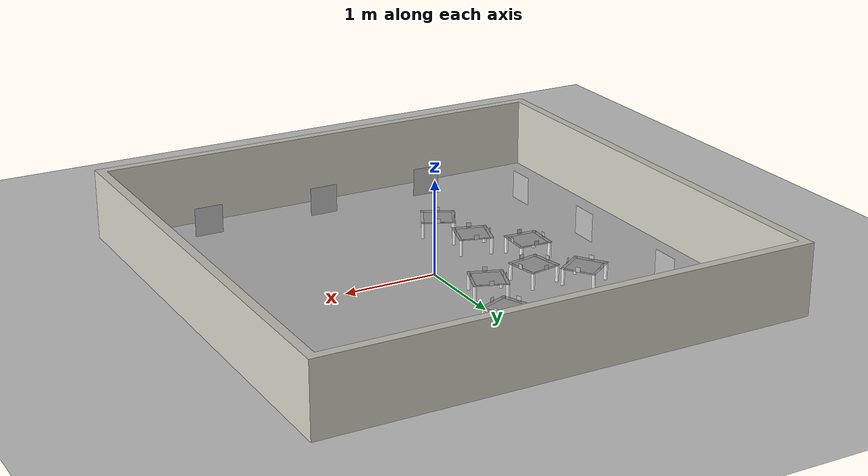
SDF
<sdf version="1.6">
 <world name="default">
  <physics name="default_physics" default="0" type="ode">
   <max_step_size>0.002</max_step_size>
   <real_time_factor>1</real_time_factor>
   <real_time_update_rate>500</real_time_update_rate>
   <ode><solver><type>quick</type></solver></ode>
  </physics>
  <scene><ambient>0.4 0.4 0.4 1</ambient><background>0.7 0.7 0.7 1</background><shadows>0</shadows></scene>
  <include><uri>model://ground_plane</uri></include>
  <include><uri>model://sun</uri></include>
  <include><uri>model://arena</uri></include>
  <include>
   <uri>model://carrier100</uri>
   <name>carrier100</name>
   <pose>-0.673758 -0.410567 0 0 0 -1.866816</pose>
  </include>
  <include>
   <uri>model://carrier101</uri>
   <name>carrier101</name>
   <pose>-0.657850 1.771559 0 0 0 -0.111598</pose>
  </include>
  <include>
   <uri>model://carrier102</uri>
   <name>carrier102</name>
   <pose>-1.077948 0.013895 0 0 0 1.518797</pose>
  </include>
  <include>
   <uri>model://carrier103</uri>
   <name>carrier103</name>
   <pose>-0.203010 0.698064 0 0 0 1.223442</pose>
  </include>
  <include>
   <uri>model://carrier104</uri>
   <name>carrier104</name>
   <pose>-0.009148 1.375804 0 0 0 0.388665</pose>
  </include>
  <include>
   <uri>model://carrier105</uri>
   <name>carrier105</name>
   <pose>-0.583773 -0.990893 0 0 0 1.091607</pose>
  </include>
  <include>
   <uri>model://carrier106</uri>
   <name>carrier106</name>
   <pose>-0.780160 0.610297 0 0 0 1.759919</pose>
  </include>
  <include>
   <uri>model://carrier107</uri>
   <name>carrier107</name>
   <pose>-1.196731 0.885650 0 0 0 -0.967300</pose>
  </include>
 </world>
</sdf>

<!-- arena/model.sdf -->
<sdf version="1.5">
    <model name="arena">
      <static>true</static>
      <link name="link">
        <inertial>
          <mass>1.0</mass>
          <inertia><ixx>0.01</ixx><ixy>0.0</ixy><ixz>0.0</ixz>
            <iyy>0.01</iyy><iyz>0.0</iyz><izz>0.01</izz>
          </inertia>
        </inertial>
        <collision name="collision">
          <geometry>
            <mesh>
              <uri>model://arena_walls/arena.stl</uri>
              <scale>0.001 0.001 0.0005</scale>
            </mesh>
          </geometry>
          <surface>
              <friction>
              <ode>
                <mu>0.1</mu>
                <mu2>0.1</mu2>
              </ode>
              </friction>
          </surface>
        </collision>
        <visual name="visual">
          <geometry>
            <mesh>
              <uri>model://arena_walls/arena.stl</uri>
              <scale>0.001 0.001 0.0005</scale>
            </mesh>
          </geometry>
          <material>
            <script>
              <name>Gazebo/PaintedWall</name>
              <uri>file://media/materials/scripts/gazebo.material</uri>
            </script>
          </material>
        </visual>
        <visual name="tag000">
          <pose>2.499 0.5 0.4 0.03 0 0</pose> <geometry> <box><size>0.00011 0.3 0.3</size></box> </geometry>
          <material> <script> <uri>file://media/materials/scripts/tag.material</uri> <name>tag000</name> </script> </material>
        </visual>
        <visual name="tag001">
          <pose>2.499 1.73 0.4 -0.01 0 0</pose> <geometry> <box><size>0.00011 0.3 0.3</size></box> </geometry>
          <material> <script> <uri>file://media/materials/scripts/tag.material</uri> <name>tag001</name> </script> </material>
        </visual>
        <visual name="tag002">
          <pose>1.8 2.499 0.41 0.03 0 1.5708</pose> <geometry> <box><size>0.00011 0.3 0.3</size></box> </geometry>
          <material> <script> <uri>file://media/materials/scripts/tag.material</uri> <name>tag002</name> </script> </material>
        </visual>
        <visual name="tag003">
          <pose>0.6 2.499 0.42 0.01 0 1.5708</pose> <geometry> <box><size>0.00011 0.3 0.3</size></box> </geometry>
          <material> <script> <uri>file://media/materials/scripts/tag.material</uri> <name>tag003</name> </script> </material>
        </visual>
        <visual name="tag004">
          <pose>-0.82 2.499 0.4 -0.05 0 1.5708</pose> <geometry> <box><size>0.00011 0.3 0.3</size></box> </geometry>
          <material> <script> <uri>file://media/materials/scripts/tag.material</uri> <name>tag004</name> </script> </material>
        </visual>
        <visual name="tag005">
          <pose>-1.5 1.78 0.41 0.0 0 0</pose> <geometry> <box><size>0.00011 0.3 0.3</size></box> </geometry>
          <material> <script> <uri>file://media/materials/scripts/tag.material</uri> <name>tag005</name> </script> </material>
        </visual>
        <visual name="tag006">
          <pose>-1.5 0.4 0.4 -0.01 0 0</pose> <geometry> <box><size>0.00011 0.3 0.3</size></box> </geometry>
          <material> <script> <uri>file://media/materials/scripts/tag.material</uri> <name>tag006</name> </script> </material>
        </visual>
        <visual name="tag007">
          <pose>-1.5 -0.82 0.4 0.002 0 0</pose> <geometry> <box><size>0.00011 0.3 0.3</size></box> </geometry>
          <material> <script> <uri>file://media/materials/scripts/tag.material</uri> <name>tag007</name> </script> </material>
        </visual>
        <visual name="tag008">
          <pose>1.79 -1.5 0.41 0.002 0 -1.5708</pose> <geometry> <box><size>0.00011 0.3 0.3</size></box> </geometry>
          <material> <script> <uri>file://media/materials/scripts/tag.material</uri> <name>tag008</name> </script> </material>
        </visual>
        <visual name="tag009">
          <pose>0.5 -1.5 0.4 -0.001 0 -1.5708</pose> <geometry> <box><size>0.00011 0.3 0.3</size></box> </geometry>
          <material> <script> <uri>file://media/materials/scripts/tag.material</uri> <name>tag009</name> </script> </material>
        </visual>
        <visual name="tag010">
          <pose>-0.72 -1.5 0.4 0.03 0 -1.5708</pose> <geometry> <box><size>0.00011 0.3 0.3</size></box> </geometry>
          <material> <script> <uri>file://media/materials/scripts/tag.material</uri> <name>tag010</name> </script> </material>
        </visual>
        <visual name="tag011">
          <pose>2.499 -0.77 0.392 0.002 0 0</pose> <geometry> <box><size>0.00011 0.3 0.3</size></box> </geometry>
          <material> <script> <uri>file://media/materials/scripts/tag.material</uri> <name>tag011</name> </script> </material>
        </visual>
        <visual name="floor">
          <pose>0 0 0.002 0 0 0</pose>
          <geometry>
            <box>
              <size>5 5 0.001</size>
            </box>
          </geometry>
          <material>
            <script>
              <name>floortile</name>
              <uri>file://media/materials/scripts/floortile.material</uri>
            </script>
          </material>
        </visual>
      </link>
    </model>
</sdf>

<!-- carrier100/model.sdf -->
<sdf version="1.5">
  <model name="carrier">
    <static>false</static>
    <link name="base_link">
      <inertial> <mass>1.0</mass> <inertia><ixx>0.001</ixx><iyy>0.001</iyy><izz>0.001</izz></inertia> </inertial>
      <collision name="surface">
        <pose>0 0 0.18 0 0 0</pose>
        <geometry> <box> <size>0.36 0.36 0.01</size> </box> </geometry>
        <surface> <friction> <ode> <mu>Inf</mu> <mu2>Inf</mu2> </ode> </friction> </surface>
      </collision>
      <visual name="visual1">
        <pose>0 0 0.18 0 0 0</pose>
        <geometry> <box> <size>0.36 0.36 0.01</size> </box> </geometry>
        <material> <script> <uri>file://media/materials/scripts/gazebo.material</uri> <name>Gazebo/GreyTransparent</name> </script> </material>
      </visual>
      <visual name="tagn">
        <pose>0 0.18 0.200 1.5708 1.5708 0</pose>
        <geometry> <box> <size>0.05 0.05 0.001</size> </box> </geometry>
        <material> <script> <uri>file://media/materials/scripts/tag.material</uri> <name>tag100</name> </script> </material>
      </visual>
      <visual name="tags">
        <pose>0 -0.18 0.200 1.5708 -1.5708 0</pose>
        <geometry> <box> <size>0.05 0.05 0.001</size> </box> </geometry>
        <material> <script> <uri>file://media/materials/scripts/tag.material</uri> <name>tag100</name> </script> </material>
      </visual>
      <visual name="tage">
        <pose>0.18 0 0.200 1.5708 -1.5708 1.5708</pose>
        <geometry> <box> <size>0.05 0.05 0.001</size> </box> </geometry>
        <material> <script> <uri>file://media/materials/scripts/tag.material</uri> <name>tag100</name> </script> </material>
      </visual>
      <visual name="tagw">
        <pose>-0.18 0 0.200 1.5708 1.5708 1.5708</pose>
        <geometry> <box> <size>0.05 0.05 0.001</size> </box> </geometry>
        <material> <script> <uri>file://media/materials/scripts/tag.material</uri> <name>tag100</name> </script> </material>
      </visual>
      <visual name="tagt">
        <pose>0.0 0 0.175 0 0 0</pose>
        <geometry> <box> <size>0.3 0.3 0.001</size> </box> </geometry>
        <material> <script> <uri>file://media/materials/scripts/tag.material</uri> <name>mm49_target</name> </script> </material>
      </visual>
      <collision name="front_left_leg">
        <pose>0.162 0.162 0.09 0 0 0</pose>
        <geometry> <cylinder> <radius>0.018</radius> <length>0.175</length> </cylinder> </geometry>
        <surface> <friction> <ode> <mu>0.1</mu> <mu2>0.1</mu2> </ode> </friction> </surface>
      </collision>
      <visual name="front_left_leg">
        <pose>0.162 0.162 0.09 0 0 0</pose>
        <geometry> <cylinder> <radius>0.018</radius> <length>0.175</length> </cylinder> </geometry>
        <material> <script> <uri>file://media/materials/scripts/gazebo.material</uri> <name>Gazebo/White</name> </script> </material>
      </visual>
      <collision name="front_right_leg">
        <pose>0.162 -0.162 0.09 0 0 0</pose>
        <geometry> <cylinder> <radius>0.018</radius> <length>0.175</length> </cylinder> </geometry>
        <surface> <friction> <ode> <mu>0.1</mu> <mu2>0.1</mu2> </ode> </friction> </surface>
      </collision>
      <visual name="front_right_leg">
        <pose>0.162 -0.162 0.09 0 0 0</pose>
        <geometry> <cylinder> <radius>0.018</radius> <length>0.175</length> </cylinder> </geometry>
        <material> <script> <uri>file://media/materials/scripts/gazebo.material</uri> <name>Gazebo/White</name> </script> </material>
      </visual>
      <collision name="back_right_leg">
        <pose>-0.162 -0.162 0.09 0 0 0</pose>
        <geometry> <cylinder> <radius>0.018</radius> <length>0.175</length> </cylinder> </geometry>
        <surface> <friction> <ode> <mu>0.1</mu> <mu2>0.1</mu2> </ode> </friction> </surface>
      </collision>
      <visual name="back_right_leg">
        <pose>-0.162 -0.162 0.09 0 0 0</pose>
        <geometry> <cylinder> <radius>0.018</radius> <length>0.175</length> </cylinder> </geometry>
        <material> <script> <uri>file://media/materials/scripts/gazebo.material</uri> <name>Gazebo/White</name> </script> </material>
      </visual>
      <collision name="back_left_leg">
        <pose>-0.162 0.162 0.09 0 0 0</pose>
        <geometry> <cylinder> <radius>0.018</radius> <length>0.175</length> </cylinder> </geometry>
        <surface> <friction> <ode> <mu>0.1</mu> <mu2>0.1</mu2> </ode> </friction> </surface>
      </collision>
      <visual name="back_left_leg">
        <pose>-0.162 0.162 0.09 0 0 0</pose>
        <geometry> <cylinder> <radius>0.018</radius> <length>0.175</length> </cylinder> </geometry>
        <material> <script> <uri>file://media/materials/scripts/gazebo.material</uri> <name>Gazebo/White</name> </script> </material>
      </visual>
    </link>
    <plugin name="gazebo_ros_p3d_named" filename="libgazebo_ros_p3d_named.so">
      <ros> <remapping>odom:=/ground_truth</remapping> <namespace>carrier100</namespace> </ros>
      <body_name>base_link</body_name>
      <frame_name>map</frame_name>
      <child_frame>carrier100</child_frame>
      <update_rate>50</update_rate>
      <xyz_offset>0.0 0.0 0.0</xyz_offset>
      <rpy_offset>0.0 0.0 0.0</rpy_offset>
      <gaussian_noise>0.01</gaussian_noise>
    </plugin>
  </model>
</sdf>

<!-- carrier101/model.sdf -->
<sdf version="1.5">
  <model name="carrier">
    <static>false</static>
    <link name="base_link">
      <inertial> <mass>1.0</mass> <inertia><ixx>0.001</ixx><iyy>0.001</iyy><izz>0.001</izz></inertia> </inertial>
      <collision name="surface">
        <pose>0 0 0.18 0 0 0</pose>
        <geometry> <box> <size>0.36 0.36 0.01</size> </box> </geometry>
        <surface> <friction> <ode> <mu>Inf</mu> <mu2>Inf</mu2> </ode> </friction> </surface>
      </collision>
      <visual name="visual1">
        <pose>0 0 0.18 0 0 0</pose>
        <geometry> <box> <size>0.36 0.36 0.01</size> </box> </geometry>
        <material> <script> <uri>file://media/materials/scripts/gazebo.material</uri> <name>Gazebo/GreyTransparent</name> </script> </material>
      </visual>
      <visual name="tagn">
        <pose>0 0.18 0.200 1.5708 1.5708 0</pose>
        <geometry> <box> <size>0.05 0.05 0.001</size> </box> </geometry>
        <material> <script> <uri>file://media/materials/scripts/tag.material</uri> <name>tag101</name> </script> </material>
      </visual>
      <visual name="tags">
        <pose>0 -0.18 0.200 1.5708 -1.5708 0</pose>
        <geometry> <box> <size>0.05 0.05 0.001</size> </box> </geometry>
        <material> <script> <uri>file://media/materials/scripts/tag.material</uri> <name>tag101</name> </script> </material>
      </visual>
      <visual name="tage">
        <pose>0.18 0 0.200 1.5708 -1.5708 1.5708</pose>
        <geometry> <box> <size>0.05 0.05 0.001</size> </box> </geometry>
        <material> <script> <uri>file://media/materials/scripts/tag.material</uri> <name>tag101</name> </script> </material>
      </visual>
      <visual name="tagw">
        <pose>-0.18 0 0.200 1.5708 1.5708 1.5708</pose>
        <geometry> <box> <size>0.05 0.05 0.001</size> </box> </geometry>
        <material> <script> <uri>file://media/materials/scripts/tag.material</uri> <name>tag101</name> </script> </material>
      </visual>
      <visual name="tagt">
        <pose>0.0 0 0.175 0 0 0</pose>
        <geometry> <box> <size>0.3 0.3 0.001</size> </box> </geometry>
        <material> <script> <uri>file://media/materials/scripts/tag.material</uri> <name>mm49_target</name> </script> </material>
      </visual>
      <collision name="front_left_leg">
        <pose>0.162 0.162 0.09 0 0 0</pose>
        <geometry> <cylinder> <radius>0.018</radius> <length>0.175</length> </cylinder> </geometry>
        <surface> <friction> <ode> <mu>0.1</mu> <mu2>0.1</mu2> </ode> </friction> </surface>
      </collision>
      <visual name="front_left_leg">
        <pose>0.162 0.162 0.09 0 0 0</pose>
        <geometry> <cylinder> <radius>0.018</radius> <length>0.175</length> </cylinder> </geometry>
        <material> <script> <uri>file://media/materials/scripts/gazebo.material</uri> <name>Gazebo/White</name> </script> </material>
      </visual>
      <collision name="front_right_leg">
        <pose>0.162 -0.162 0.09 0 0 0</pose>
        <geometry> <cylinder> <radius>0.018</radius> <length>0.175</length> </cylinder> </geometry>
        <surface> <friction> <ode> <mu>0.1</mu> <mu2>0.1</mu2> </ode> </friction> </surface>
      </collision>
      <visual name="front_right_leg">
        <pose>0.162 -0.162 0.09 0 0 0</pose>
        <geometry> <cylinder> <radius>0.018</radius> <length>0.175</length> </cylinder> </geometry>
        <material> <script> <uri>file://media/materials/scripts/gazebo.material</uri> <name>Gazebo/White</name> </script> </material>
      </visual>
      <collision name="back_right_leg">
        <pose>-0.162 -0.162 0.09 0 0 0</pose>
        <geometry> <cylinder> <radius>0.018</radius> <length>0.175</length> </cylinder> </geometry>
        <surface> <friction> <ode> <mu>0.1</mu> <mu2>0.1</mu2> </ode> </friction> </surface>
      </collision>
      <visual name="back_right_leg">
        <pose>-0.162 -0.162 0.09 0 0 0</pose>
        <geometry> <cylinder> <radius>0.018</radius> <length>0.175</length> </cylinder> </geometry>
        <material> <script> <uri>file://media/materials/scripts/gazebo.material</uri> <name>Gazebo/White</name> </script> </material>
      </visual>
      <collision name="back_left_leg">
        <pose>-0.162 0.162 0.09 0 0 0</pose>
        <geometry> <cylinder> <radius>0.018</radius> <length>0.175</length> </cylinder> </geometry>
        <surface> <friction> <ode> <mu>0.1</mu> <mu2>0.1</mu2> </ode> </friction> </surface>
      </collision>
      <visual name="back_left_leg">
        <pose>-0.162 0.162 0.09 0 0 0</pose>
        <geometry> <cylinder> <radius>0.018</radius> <length>0.175</length> </cylinder> </geometry>
        <material> <script> <uri>file://media/materials/scripts/gazebo.material</uri> <name>Gazebo/White</name> </script> </material>
      </visual>
    </link>
    <plugin name="gazebo_ros_p3d_named" filename="libgazebo_ros_p3d_named.so">
      <ros> <remapping>odom:=/ground_truth</remapping> <namespace>carrier101</namespace> </ros>
      <body_name>base_link</body_name>
      <frame_name>map</frame_name>
      <child_frame>carrier101</child_frame>
      <update_rate>50</update_rate>
      <xyz_offset>0.0 0.0 0.0</xyz_offset>
      <rpy_offset>0.0 0.0 0.0</rpy_offset>
      <gaussian_noise>0.01</gaussian_noise>
    </plugin>
  </model>
</sdf>

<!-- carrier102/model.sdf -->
<sdf version="1.5">
  <model name="carrier">
    <static>false</static>
    <link name="base_link">
      <inertial> <mass>1.0</mass> <inertia><ixx>0.001</ixx><iyy>0.001</iyy><izz>0.001</izz></inertia> </inertial>
      <collision name="surface">
        <pose>0 0 0.18 0 0 0</pose>
        <geometry> <box> <size>0.36 0.36 0.01</size> </box> </geometry>
        <surface> <friction> <ode> <mu>Inf</mu> <mu2>Inf</mu2> </ode> </friction> </surface>
      </collision>
      <visual name="visual1">
        <pose>0 0 0.18 0 0 0</pose>
        <geometry> <box> <size>0.36 0.36 0.01</size> </box> </geometry>
        <material> <script> <uri>file://media/materials/scripts/gazebo.material</uri> <name>Gazebo/GreyTransparent</name> </script> </material>
      </visual>
      <visual name="tagn">
        <pose>0 0.18 0.200 1.5708 1.5708 0</pose>
        <geometry> <box> <size>0.05 0.05 0.001</size> </box> </geometry>
        <material> <script> <uri>file://media/materials/scripts/tag.material</uri> <name>tag102</name> </script> </material>
      </visual>
      <visual name="tags">
        <pose>0 -0.18 0.200 1.5708 -1.5708 0</pose>
        <geometry> <box> <size>0.05 0.05 0.001</size> </box> </geometry>
        <material> <script> <uri>file://media/materials/scripts/tag.material</uri> <name>tag102</name> </script> </material>
      </visual>
      <visual name="tage">
        <pose>0.18 0 0.200 1.5708 -1.5708 1.5708</pose>
        <geometry> <box> <size>0.05 0.05 0.001</size> </box> </geometry>
        <material> <script> <uri>file://media/materials/scripts/tag.material</uri> <name>tag102</name> </script> </material>
      </visual>
      <visual name="tagw">
        <pose>-0.18 0 0.200 1.5708 1.5708 1.5708</pose>
        <geometry> <box> <size>0.05 0.05 0.001</size> </box> </geometry>
        <material> <script> <uri>file://media/materials/scripts/tag.material</uri> <name>tag102</name> </script> </material>
      </visual>
      <visual name="tagt">
        <pose>0.0 0 0.175 0 0 0</pose>
        <geometry> <box> <size>0.3 0.3 0.001</size> </box> </geometry>
        <material> <script> <uri>file://media/materials/scripts/tag.material</uri> <name>mm49_target</name> </script> </material>
      </visual>
      <collision name="front_left_leg">
        <pose>0.162 0.162 0.09 0 0 0</pose>
        <geometry> <cylinder> <radius>0.018</radius> <length>0.175</length> </cylinder> </geometry>
        <surface> <friction> <ode> <mu>0.1</mu> <mu2>0.1</mu2> </ode> </friction> </surface>
      </collision>
      <visual name="front_left_leg">
        <pose>0.162 0.162 0.09 0 0 0</pose>
        <geometry> <cylinder> <radius>0.018</radius> <length>0.175</length> </cylinder> </geometry>
        <material> <script> <uri>file://media/materials/scripts/gazebo.material</uri> <name>Gazebo/White</name> </script> </material>
      </visual>
      <collision name="front_right_leg">
        <pose>0.162 -0.162 0.09 0 0 0</pose>
        <geometry> <cylinder> <radius>0.018</radius> <length>0.175</length> </cylinder> </geometry>
        <surface> <friction> <ode> <mu>0.1</mu> <mu2>0.1</mu2> </ode> </friction> </surface>
      </collision>
      <visual name="front_right_leg">
        <pose>0.162 -0.162 0.09 0 0 0</pose>
        <geometry> <cylinder> <radius>0.018</radius> <length>0.175</length> </cylinder> </geometry>
        <material> <script> <uri>file://media/materials/scripts/gazebo.material</uri> <name>Gazebo/White</name> </script> </material>
      </visual>
      <collision name="back_right_leg">
        <pose>-0.162 -0.162 0.09 0 0 0</pose>
        <geometry> <cylinder> <radius>0.018</radius> <length>0.175</length> </cylinder> </geometry>
        <surface> <friction> <ode> <mu>0.1</mu> <mu2>0.1</mu2> </ode> </friction> </surface>
      </collision>
      <visual name="back_right_leg">
        <pose>-0.162 -0.162 0.09 0 0 0</pose>
        <geometry> <cylinder> <radius>0.018</radius> <length>0.175</length> </cylinder> </geometry>
        <material> <script> <uri>file://media/materials/scripts/gazebo.material</uri> <name>Gazebo/White</name> </script> </material>
      </visual>
      <collision name="back_left_leg">
        <pose>-0.162 0.162 0.09 0 0 0</pose>
        <geometry> <cylinder> <radius>0.018</radius> <length>0.175</length> </cylinder> </geometry>
        <surface> <friction> <ode> <mu>0.1</mu> <mu2>0.1</mu2> </ode> </friction> </surface>
      </collision>
      <visual name="back_left_leg">
        <pose>-0.162 0.162 0.09 0 0 0</pose>
        <geometry> <cylinder> <radius>0.018</radius> <length>0.175</length> </cylinder> </geometry>
        <material> <script> <uri>file://media/materials/scripts/gazebo.material</uri> <name>Gazebo/White</name> </script> </material>
      </visual>
    </link>
    <plugin name="gazebo_ros_p3d_named" filename="libgazebo_ros_p3d_named.so">
      <ros> <remapping>odom:=/ground_truth</remapping> <namespace>carrier102</namespace> </ros>
      <body_name>base_link</body_name>
      <frame_name>map</frame_name>
      <child_frame>carrier102</child_frame>
      <update_rate>50</update_rate>
      <xyz_offset>0.0 0.0 0.0</xyz_offset>
      <rpy_offset>0.0 0.0 0.0</rpy_offset>
      <gaussian_noise>0.01</gaussian_noise>
    </plugin>
  </model>
</sdf>

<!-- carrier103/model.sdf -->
<sdf version="1.5">
  <model name="carrier">
    <static>false</static>
    <link name="base_link">
      <inertial> <mass>1.0</mass> <inertia><ixx>0.001</ixx><iyy>0.001</iyy><izz>0.001</izz></inertia> </inertial>
      <collision name="surface">
        <pose>0 0 0.18 0 0 0</pose>
        <geometry> <box> <size>0.36 0.36 0.01</size> </box> </geometry>
        <surface> <friction> <ode> <mu>Inf</mu> <mu2>Inf</mu2> </ode> </friction> </surface>
      </collision>
      <visual name="visual1">
        <pose>0 0 0.18 0 0 0</pose>
        <geometry> <box> <size>0.36 0.36 0.01</size> </box> </geometry>
        <material> <script> <uri>file://media/materials/scripts/gazebo.material</uri> <name>Gazebo/GreyTransparent</name> </script> </material>
      </visual>
      <visual name="tagn">
        <pose>0 0.18 0.200 1.5708 1.5708 0</pose>
        <geometry> <box> <size>0.05 0.05 0.001</size> </box> </geometry>
        <material> <script> <uri>file://media/materials/scripts/tag.material</uri> <name>tag103</name> </script> </material>
      </visual>
      <visual name="tags">
        <pose>0 -0.18 0.200 1.5708 -1.5708 0</pose>
        <geometry> <box> <size>0.05 0.05 0.001</size> </box> </geometry>
        <material> <script> <uri>file://media/materials/scripts/tag.material</uri> <name>tag103</name> </script> </material>
      </visual>
      <visual name="tage">
        <pose>0.18 0 0.200 1.5708 -1.5708 1.5708</pose>
        <geometry> <box> <size>0.05 0.05 0.001</size> </box> </geometry>
        <material> <script> <uri>file://media/materials/scripts/tag.material</uri> <name>tag103</name> </script> </material>
      </visual>
      <visual name="tagw">
        <pose>-0.18 0 0.200 1.5708 1.5708 1.5708</pose>
        <geometry> <box> <size>0.05 0.05 0.001</size> </box> </geometry>
        <material> <script> <uri>file://media/materials/scripts/tag.material</uri> <name>tag103</name> </script> </material>
      </visual>
      <visual name="tagt">
        <pose>0.0 0 0.175 0 0 0</pose>
        <geometry> <box> <size>0.3 0.3 0.001</size> </box> </geometry>
        <material> <script> <uri>file://media/materials/scripts/tag.material</uri> <name>mm49_target</name> </script> </material>
      </visual>
      <collision name="front_left_leg">
        <pose>0.162 0.162 0.09 0 0 0</pose>
        <geometry> <cylinder> <radius>0.018</radius> <length>0.175</length> </cylinder> </geometry>
        <surface> <friction> <ode> <mu>0.1</mu> <mu2>0.1</mu2> </ode> </friction> </surface>
      </collision>
      <visual name="front_left_leg">
        <pose>0.162 0.162 0.09 0 0 0</pose>
        <geometry> <cylinder> <radius>0.018</radius> <length>0.175</length> </cylinder> </geometry>
        <material> <script> <uri>file://media/materials/scripts/gazebo.material</uri> <name>Gazebo/White</name> </script> </material>
      </visual>
      <collision name="front_right_leg">
        <pose>0.162 -0.162 0.09 0 0 0</pose>
        <geometry> <cylinder> <radius>0.018</radius> <length>0.175</length> </cylinder> </geometry>
        <surface> <friction> <ode> <mu>0.1</mu> <mu2>0.1</mu2> </ode> </friction> </surface>
      </collision>
      <visual name="front_right_leg">
        <pose>0.162 -0.162 0.09 0 0 0</pose>
        <geometry> <cylinder> <radius>0.018</radius> <length>0.175</length> </cylinder> </geometry>
        <material> <script> <uri>file://media/materials/scripts/gazebo.material</uri> <name>Gazebo/White</name> </script> </material>
      </visual>
      <collision name="back_right_leg">
        <pose>-0.162 -0.162 0.09 0 0 0</pose>
        <geometry> <cylinder> <radius>0.018</radius> <length>0.175</length> </cylinder> </geometry>
        <surface> <friction> <ode> <mu>0.1</mu> <mu2>0.1</mu2> </ode> </friction> </surface>
      </collision>
      <visual name="back_right_leg">
        <pose>-0.162 -0.162 0.09 0 0 0</pose>
        <geometry> <cylinder> <radius>0.018</radius> <length>0.175</length> </cylinder> </geometry>
        <material> <script> <uri>file://media/materials/scripts/gazebo.material</uri> <name>Gazebo/White</name> </script> </material>
      </visual>
      <collision name="back_left_leg">
        <pose>-0.162 0.162 0.09 0 0 0</pose>
        <geometry> <cylinder> <radius>0.018</radius> <length>0.175</length> </cylinder> </geometry>
        <surface> <friction> <ode> <mu>0.1</mu> <mu2>0.1</mu2> </ode> </friction> </surface>
      </collision>
      <visual name="back_left_leg">
        <pose>-0.162 0.162 0.09 0 0 0</pose>
        <geometry> <cylinder> <radius>0.018</radius> <length>0.175</length> </cylinder> </geometry>
        <material> <script> <uri>file://media/materials/scripts/gazebo.material</uri> <name>Gazebo/White</name> </script> </material>
      </visual>
    </link>
    <plugin name="gazebo_ros_p3d_named" filename="libgazebo_ros_p3d_named.so">
      <ros> <remapping>odom:=/ground_truth</remapping> <namespace>carrier103</namespace> </ros>
      <body_name>base_link</body_name>
      <frame_name>map</frame_name>
      <child_frame>carrier103</child_frame>
      <update_rate>50</update_rate>
      <xyz_offset>0.0 0.0 0.0</xyz_offset>
      <rpy_offset>0.0 0.0 0.0</rpy_offset>
      <gaussian_noise>0.01</gaussian_noise>
    </plugin>
  </model>
</sdf>

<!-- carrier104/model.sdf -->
<sdf version="1.5">
  <model name="carrier">
    <static>false</static>
    <link name="base_link">
      <inertial> <mass>1.0</mass> <inertia><ixx>0.001</ixx><iyy>0.001</iyy><izz>0.001</izz></inertia> </inertial>
      <collision name="surface">
        <pose>0 0 0.18 0 0 0</pose>
        <geometry> <box> <size>0.36 0.36 0.01</size> </box> </geometry>
        <surface> <friction> <ode> <mu>Inf</mu> <mu2>Inf</mu2> </ode> </friction> </surface>
      </collision>
      <visual name="visual1">
        <pose>0 0 0.18 0 0 0</pose>
        <geometry> <box> <size>0.36 0.36 0.01</size> </box> </geometry>
        <material> <script> <uri>file://media/materials/scripts/gazebo.material</uri> <name>Gazebo/GreyTransparent</name> </script> </material>
      </visual>
      <visual name="tagn">
        <pose>0 0.18 0.200 1.5708 1.5708 0</pose>
        <geometry> <box> <size>0.05 0.05 0.001</size> </box> </geometry>
        <material> <script> <uri>file://media/materials/scripts/tag.material</uri> <name>tag104</name> </script> </material>
      </visual>
      <visual name="tags">
        <pose>0 -0.18 0.200 1.5708 -1.5708 0</pose>
        <geometry> <box> <size>0.05 0.05 0.001</size> </box> </geometry>
        <material> <script> <uri>file://media/materials/scripts/tag.material</uri> <name>tag104</name> </script> </material>
      </visual>
      <visual name="tage">
        <pose>0.18 0 0.200 1.5708 -1.5708 1.5708</pose>
        <geometry> <box> <size>0.05 0.05 0.001</size> </box> </geometry>
        <material> <script> <uri>file://media/materials/scripts/tag.material</uri> <name>tag104</name> </script> </material>
      </visual>
      <visual name="tagw">
        <pose>-0.18 0 0.200 1.5708 1.5708 1.5708</pose>
        <geometry> <box> <size>0.05 0.05 0.001</size> </box> </geometry>
        <material> <script> <uri>file://media/materials/scripts/tag.material</uri> <name>tag104</name> </script> </material>
      </visual>
      <visual name="tagt">
        <pose>0.0 0 0.175 0 0 0</pose>
        <geometry> <box> <size>0.3 0.3 0.001</size> </box> </geometry>
        <material> <script> <uri>file://media/materials/scripts/tag.material</uri> <name>mm49_target</name> </script> </material>
      </visual>
      <collision name="front_left_leg">
        <pose>0.162 0.162 0.09 0 0 0</pose>
        <geometry> <cylinder> <radius>0.018</radius> <length>0.175</length> </cylinder> </geometry>
        <surface> <friction> <ode> <mu>0.1</mu> <mu2>0.1</mu2> </ode> </friction> </surface>
      </collision>
      <visual name="front_left_leg">
        <pose>0.162 0.162 0.09 0 0 0</pose>
        <geometry> <cylinder> <radius>0.018</radius> <length>0.175</length> </cylinder> </geometry>
        <material> <script> <uri>file://media/materials/scripts/gazebo.material</uri> <name>Gazebo/White</name> </script> </material>
      </visual>
      <collision name="front_right_leg">
        <pose>0.162 -0.162 0.09 0 0 0</pose>
        <geometry> <cylinder> <radius>0.018</radius> <length>0.175</length> </cylinder> </geometry>
        <surface> <friction> <ode> <mu>0.1</mu> <mu2>0.1</mu2> </ode> </friction> </surface>
      </collision>
      <visual name="front_right_leg">
        <pose>0.162 -0.162 0.09 0 0 0</pose>
        <geometry> <cylinder> <radius>0.018</radius> <length>0.175</length> </cylinder> </geometry>
        <material> <script> <uri>file://media/materials/scripts/gazebo.material</uri> <name>Gazebo/White</name> </script> </material>
      </visual>
      <collision name="back_right_leg">
        <pose>-0.162 -0.162 0.09 0 0 0</pose>
        <geometry> <cylinder> <radius>0.018</radius> <length>0.175</length> </cylinder> </geometry>
        <surface> <friction> <ode> <mu>0.1</mu> <mu2>0.1</mu2> </ode> </friction> </surface>
      </collision>
      <visual name="back_right_leg">
        <pose>-0.162 -0.162 0.09 0 0 0</pose>
        <geometry> <cylinder> <radius>0.018</radius> <length>0.175</length> </cylinder> </geometry>
        <material> <script> <uri>file://media/materials/scripts/gazebo.material</uri> <name>Gazebo/White</name> </script> </material>
      </visual>
      <collision name="back_left_leg">
        <pose>-0.162 0.162 0.09 0 0 0</pose>
        <geometry> <cylinder> <radius>0.018</radius> <length>0.175</length> </cylinder> </geometry>
        <surface> <friction> <ode> <mu>0.1</mu> <mu2>0.1</mu2> </ode> </friction> </surface>
      </collision>
      <visual name="back_left_leg">
        <pose>-0.162 0.162 0.09 0 0 0</pose>
        <geometry> <cylinder> <radius>0.018</radius> <length>0.175</length> </cylinder> </geometry>
        <material> <script> <uri>file://media/materials/scripts/gazebo.material</uri> <name>Gazebo/White</name> </script> </material>
      </visual>
    </link>
    <plugin name="gazebo_ros_p3d_named" filename="libgazebo_ros_p3d_named.so">
      <ros> <remapping>odom:=/ground_truth</remapping> <namespace>carrier104</namespace> </ros>
      <body_name>base_link</body_name>
      <frame_name>map</frame_name>
      <child_frame>carrier104</child_frame>
      <update_rate>50</update_rate>
      <xyz_offset>0.0 0.0 0.0</xyz_offset>
      <rpy_offset>0.0 0.0 0.0</rpy_offset>
      <gaussian_noise>0.01</gaussian_noise>
    </plugin>
  </model>
</sdf>

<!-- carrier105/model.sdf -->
<sdf version="1.5">
  <model name="carrier">
    <static>false</static>
    <link name="base_link">
      <inertial> <mass>1.0</mass> <inertia><ixx>0.001</ixx><iyy>0.001</iyy><izz>0.001</izz></inertia> </inertial>
      <collision name="surface">
        <pose>0 0 0.18 0 0 0</pose>
        <geometry> <box> <size>0.36 0.36 0.01</size> </box> </geometry>
        <surface> <friction> <ode> <mu>Inf</mu> <mu2>Inf</mu2> </ode> </friction> </surface>
      </collision>
      <visual name="visual1">
        <pose>0 0 0.18 0 0 0</pose>
        <geometry> <box> <size>0.36 0.36 0.01</size> </box> </geometry>
        <material> <script> <uri>file://media/materials/scripts/gazebo.material</uri> <name>Gazebo/GreyTransparent</name> </script> </material>
      </visual>
      <visual name="tagn">
        <pose>0 0.18 0.200 1.5708 1.5708 0</pose>
        <geometry> <box> <size>0.05 0.05 0.001</size> </box> </geometry>
        <material> <script> <uri>file://media/materials/scripts/tag.material</uri> <name>tag105</name> </script> </material>
      </visual>
      <visual name="tags">
        <pose>0 -0.18 0.200 1.5708 -1.5708 0</pose>
        <geometry> <box> <size>0.05 0.05 0.001</size> </box> </geometry>
        <material> <script> <uri>file://media/materials/scripts/tag.material</uri> <name>tag105</name> </script> </material>
      </visual>
      <visual name="tage">
        <pose>0.18 0 0.200 1.5708 -1.5708 1.5708</pose>
        <geometry> <box> <size>0.05 0.05 0.001</size> </box> </geometry>
        <material> <script> <uri>file://media/materials/scripts/tag.material</uri> <name>tag105</name> </script> </material>
      </visual>
      <visual name="tagw">
        <pose>-0.18 0 0.200 1.5708 1.5708 1.5708</pose>
        <geometry> <box> <size>0.05 0.05 0.001</size> </box> </geometry>
        <material> <script> <uri>file://media/materials/scripts/tag.material</uri> <name>tag105</name> </script> </material>
      </visual>
      <visual name="tagt">
        <pose>0.0 0 0.175 0 0 0</pose>
        <geometry> <box> <size>0.3 0.3 0.001</size> </box> </geometry>
        <material> <script> <uri>file://media/materials/scripts/tag.material</uri> <name>mm49_target</name> </script> </material>
      </visual>
      <collision name="front_left_leg">
        <pose>0.162 0.162 0.09 0 0 0</pose>
        <geometry> <cylinder> <radius>0.018</radius> <length>0.175</length> </cylinder> </geometry>
        <surface> <friction> <ode> <mu>0.1</mu> <mu2>0.1</mu2> </ode> </friction> </surface>
      </collision>
      <visual name="front_left_leg">
        <pose>0.162 0.162 0.09 0 0 0</pose>
        <geometry> <cylinder> <radius>0.018</radius> <length>0.175</length> </cylinder> </geometry>
        <material> <script> <uri>file://media/materials/scripts/gazebo.material</uri> <name>Gazebo/White</name> </script> </material>
      </visual>
      <collision name="front_right_leg">
        <pose>0.162 -0.162 0.09 0 0 0</pose>
        <geometry> <cylinder> <radius>0.018</radius> <length>0.175</length> </cylinder> </geometry>
        <surface> <friction> <ode> <mu>0.1</mu> <mu2>0.1</mu2> </ode> </friction> </surface>
      </collision>
      <visual name="front_right_leg">
        <pose>0.162 -0.162 0.09 0 0 0</pose>
        <geometry> <cylinder> <radius>0.018</radius> <length>0.175</length> </cylinder> </geometry>
        <material> <script> <uri>file://media/materials/scripts/gazebo.material</uri> <name>Gazebo/White</name> </script> </material>
      </visual>
      <collision name="back_right_leg">
        <pose>-0.162 -0.162 0.09 0 0 0</pose>
        <geometry> <cylinder> <radius>0.018</radius> <length>0.175</length> </cylinder> </geometry>
        <surface> <friction> <ode> <mu>0.1</mu> <mu2>0.1</mu2> </ode> </friction> </surface>
      </collision>
      <visual name="back_right_leg">
        <pose>-0.162 -0.162 0.09 0 0 0</pose>
        <geometry> <cylinder> <radius>0.018</radius> <length>0.175</length> </cylinder> </geometry>
        <material> <script> <uri>file://media/materials/scripts/gazebo.material</uri> <name>Gazebo/White</name> </script> </material>
      </visual>
      <collision name="back_left_leg">
        <pose>-0.162 0.162 0.09 0 0 0</pose>
        <geometry> <cylinder> <radius>0.018</radius> <length>0.175</length> </cylinder> </geometry>
        <surface> <friction> <ode> <mu>0.1</mu> <mu2>0.1</mu2> </ode> </friction> </surface>
      </collision>
      <visual name="back_left_leg">
        <pose>-0.162 0.162 0.09 0 0 0</pose>
        <geometry> <cylinder> <radius>0.018</radius> <length>0.175</length> </cylinder> </geometry>
        <material> <script> <uri>file://media/materials/scripts/gazebo.material</uri> <name>Gazebo/White</name> </script> </material>
      </visual>
    </link>
    <plugin name="gazebo_ros_p3d_named" filename="libgazebo_ros_p3d_named.so">
      <ros> <remapping>odom:=/ground_truth</remapping> <namespace>carrier105</namespace> </ros>
      <body_name>base_link</body_name>
      <frame_name>map</frame_name>
      <child_frame>carrier105</child_frame>
      <update_rate>50</update_rate>
      <xyz_offset>0.0 0.0 0.0</xyz_offset>
      <rpy_offset>0.0 0.0 0.0</rpy_offset>
      <gaussian_noise>0.01</gaussian_noise>
    </plugin>
  </model>
</sdf>

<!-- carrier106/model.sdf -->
<sdf version="1.5">
  <model name="carrier">
    <static>false</static>
    <link name="base_link">
      <inertial> <mass>1.0</mass> <inertia><ixx>0.001</ixx><iyy>0.001</iyy><izz>0.001</izz></inertia> </inertial>
      <collision name="surface">
        <pose>0 0 0.18 0 0 0</pose>
        <geometry> <box> <size>0.36 0.36 0.01</size> </box> </geometry>
        <surface> <friction> <ode> <mu>Inf</mu> <mu2>Inf</mu2> </ode> </friction> </surface>
      </collision>
      <visual name="visual1">
        <pose>0 0 0.18 0 0 0</pose>
        <geometry> <box> <size>0.36 0.36 0.01</size> </box> </geometry>
        <material> <script> <uri>file://media/materials/scripts/gazebo.material</uri> <name>Gazebo/GreyTransparent</name> </script> </material>
      </visual>
      <visual name="tagn">
        <pose>0 0.18 0.200 1.5708 1.5708 0</pose>
        <geometry> <box> <size>0.05 0.05 0.001</size> </box> </geometry>
        <material> <script> <uri>file://media/materials/scripts/tag.material</uri> <name>tag106</name> </script> </material>
      </visual>
      <visual name="tags">
        <pose>0 -0.18 0.200 1.5708 -1.5708 0</pose>
        <geometry> <box> <size>0.05 0.05 0.001</size> </box> </geometry>
        <material> <script> <uri>file://media/materials/scripts/tag.material</uri> <name>tag106</name> </script> </material>
      </visual>
      <visual name="tage">
        <pose>0.18 0 0.200 1.5708 -1.5708 1.5708</pose>
        <geometry> <box> <size>0.05 0.05 0.001</size> </box> </geometry>
        <material> <script> <uri>file://media/materials/scripts/tag.material</uri> <name>tag106</name> </script> </material>
      </visual>
      <visual name="tagw">
        <pose>-0.18 0 0.200 1.5708 1.5708 1.5708</pose>
        <geometry> <box> <size>0.05 0.05 0.001</size> </box> </geometry>
        <material> <script> <uri>file://media/materials/scripts/tag.material</uri> <name>tag106</name> </script> </material>
      </visual>
      <visual name="tagt">
        <pose>0.0 0 0.175 0 0 0</pose>
        <geometry> <box> <size>0.3 0.3 0.001</size> </box> </geometry>
        <material> <script> <uri>file://media/materials/scripts/tag.material</uri> <name>mm49_target</name> </script> </material>
      </visual>
      <collision name="front_left_leg">
        <pose>0.162 0.162 0.09 0 0 0</pose>
        <geometry> <cylinder> <radius>0.018</radius> <length>0.175</length> </cylinder> </geometry>
        <surface> <friction> <ode> <mu>0.1</mu> <mu2>0.1</mu2> </ode> </friction> </surface>
      </collision>
      <visual name="front_left_leg">
        <pose>0.162 0.162 0.09 0 0 0</pose>
        <geometry> <cylinder> <radius>0.018</radius> <length>0.175</length> </cylinder> </geometry>
        <material> <script> <uri>file://media/materials/scripts/gazebo.material</uri> <name>Gazebo/White</name> </script> </material>
      </visual>
      <collision name="front_right_leg">
        <pose>0.162 -0.162 0.09 0 0 0</pose>
        <geometry> <cylinder> <radius>0.018</radius> <length>0.175</length> </cylinder> </geometry>
        <surface> <friction> <ode> <mu>0.1</mu> <mu2>0.1</mu2> </ode> </friction> </surface>
      </collision>
      <visual name="front_right_leg">
        <pose>0.162 -0.162 0.09 0 0 0</pose>
        <geometry> <cylinder> <radius>0.018</radius> <length>0.175</length> </cylinder> </geometry>
        <material> <script> <uri>file://media/materials/scripts/gazebo.material</uri> <name>Gazebo/White</name> </script> </material>
      </visual>
      <collision name="back_right_leg">
        <pose>-0.162 -0.162 0.09 0 0 0</pose>
        <geometry> <cylinder> <radius>0.018</radius> <length>0.175</length> </cylinder> </geometry>
        <surface> <friction> <ode> <mu>0.1</mu> <mu2>0.1</mu2> </ode> </friction> </surface>
      </collision>
      <visual name="back_right_leg">
        <pose>-0.162 -0.162 0.09 0 0 0</pose>
        <geometry> <cylinder> <radius>0.018</radius> <length>0.175</length> </cylinder> </geometry>
        <material> <script> <uri>file://media/materials/scripts/gazebo.material</uri> <name>Gazebo/White</name> </script> </material>
      </visual>
      <collision name="back_left_leg">
        <pose>-0.162 0.162 0.09 0 0 0</pose>
        <geometry> <cylinder> <radius>0.018</radius> <length>0.175</length> </cylinder> </geometry>
        <surface> <friction> <ode> <mu>0.1</mu> <mu2>0.1</mu2> </ode> </friction> </surface>
      </collision>
      <visual name="back_left_leg">
        <pose>-0.162 0.162 0.09 0 0 0</pose>
        <geometry> <cylinder> <radius>0.018</radius> <length>0.175</length> </cylinder> </geometry>
        <material> <script> <uri>file://media/materials/scripts/gazebo.material</uri> <name>Gazebo/White</name> </script> </material>
      </visual>
    </link>
    <plugin name="gazebo_ros_p3d_named" filename="libgazebo_ros_p3d_named.so">
      <ros> <remapping>odom:=/ground_truth</remapping> <namespace>carrier106</namespace> </ros>
      <body_name>base_link</body_name>
      <frame_name>map</frame_name>
      <child_frame>carrier106</child_frame>
      <update_rate>50</update_rate>
      <xyz_offset>0.0 0.0 0.0</xyz_offset>
      <rpy_offset>0.0 0.0 0.0</rpy_offset>
      <gaussian_noise>0.01</gaussian_noise>
    </plugin>
  </model>
</sdf>

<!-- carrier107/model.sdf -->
<sdf version="1.5">
  <model name="carrier">
    <static>false</static>
    <link name="base_link">
      <inertial> <mass>1.0</mass> <inertia><ixx>0.001</ixx><iyy>0.001</iyy><izz>0.001</izz></inertia> </inertial>
      <collision name="surface">
        <pose>0 0 0.18 0 0 0</pose>
        <geometry> <box> <size>0.36 0.36 0.01</size> </box> </geometry>
        <surface> <friction> <ode> <mu>Inf</mu> <mu2>Inf</mu2> </ode> </friction> </surface>
      </collision>
      <visual name="visual1">
        <pose>0 0 0.18 0 0 0</pose>
        <geometry> <box> <size>0.36 0.36 0.01</size> </box> </geometry>
        <material> <script> <uri>file://media/materials/scripts/gazebo.material</uri> <name>Gazebo/GreyTransparent</name> </script> </material>
      </visual>
      <visual name="tagn">
        <pose>0 0.18 0.200 1.5708 1.5708 0</pose>
        <geometry> <box> <size>0.05 0.05 0.001</size> </box> </geometry>
        <material> <script> <uri>file://media/materials/scripts/tag.material</uri> <name>tag107</name> </script> </material>
      </visual>
      <visual name="tags">
        <pose>0 -0.18 0.200 1.5708 -1.5708 0</pose>
        <geometry> <box> <size>0.05 0.05 0.001</size> </box> </geometry>
        <material> <script> <uri>file://media/materials/scripts/tag.material</uri> <name>tag107</name> </script> </material>
      </visual>
      <visual name="tage">
        <pose>0.18 0 0.200 1.5708 -1.5708 1.5708</pose>
        <geometry> <box> <size>0.05 0.05 0.001</size> </box> </geometry>
        <material> <script> <uri>file://media/materials/scripts/tag.material</uri> <name>tag107</name> </script> </material>
      </visual>
      <visual name="tagw">
        <pose>-0.18 0 0.200 1.5708 1.5708 1.5708</pose>
        <geometry> <box> <size>0.05 0.05 0.001</size> </box> </geometry>
        <material> <script> <uri>file://media/materials/scripts/tag.material</uri> <name>tag107</name> </script> </material>
      </visual>
      <visual name="tagt">
        <pose>0.0 0 0.175 0 0 0</pose>
        <geometry> <box> <size>0.3 0.3 0.001</size> </box> </geometry>
        <material> <script> <uri>file://media/materials/scripts/tag.material</uri> <name>mm49_target</name> </script> </material>
      </visual>
      <collision name="front_left_leg">
        <pose>0.162 0.162 0.09 0 0 0</pose>
        <geometry> <cylinder> <radius>0.018</radius> <length>0.175</length> </cylinder> </geometry>
        <surface> <friction> <ode> <mu>0.1</mu> <mu2>0.1</mu2> </ode> </friction> </surface>
      </collision>
      <visual name="front_left_leg">
        <pose>0.162 0.162 0.09 0 0 0</pose>
        <geometry> <cylinder> <radius>0.018</radius> <length>0.175</length> </cylinder> </geometry>
        <material> <script> <uri>file://media/materials/scripts/gazebo.material</uri> <name>Gazebo/White</name> </script> </material>
      </visual>
      <collision name="front_right_leg">
        <pose>0.162 -0.162 0.09 0 0 0</pose>
        <geometry> <cylinder> <radius>0.018</radius> <length>0.175</length> </cylinder> </geometry>
        <surface> <friction> <ode> <mu>0.1</mu> <mu2>0.1</mu2> </ode> </friction> </surface>
      </collision>
      <visual name="front_right_leg">
        <pose>0.162 -0.162 0.09 0 0 0</pose>
        <geometry> <cylinder> <radius>0.018</radius> <length>0.175</length> </cylinder> </geometry>
        <material> <script> <uri>file://media/materials/scripts/gazebo.material</uri> <name>Gazebo/White</name> </script> </material>
      </visual>
      <collision name="back_right_leg">
        <pose>-0.162 -0.162 0.09 0 0 0</pose>
        <geometry> <cylinder> <radius>0.018</radius> <length>0.175</length> </cylinder> </geometry>
        <surface> <friction> <ode> <mu>0.1</mu> <mu2>0.1</mu2> </ode> </friction> </surface>
      </collision>
      <visual name="back_right_leg">
        <pose>-0.162 -0.162 0.09 0 0 0</pose>
        <geometry> <cylinder> <radius>0.018</radius> <length>0.175</length> </cylinder> </geometry>
        <material> <script> <uri>file://media/materials/scripts/gazebo.material</uri> <name>Gazebo/White</name> </script> </material>
      </visual>
      <collision name="back_left_leg">
        <pose>-0.162 0.162 0.09 0 0 0</pose>
        <geometry> <cylinder> <radius>0.018</radius> <length>0.175</length> </cylinder> </geometry>
        <surface> <friction> <ode> <mu>0.1</mu> <mu2>0.1</mu2> </ode> </friction> </surface>
      </collision>
      <visual name="back_left_leg">
        <pose>-0.162 0.162 0.09 0 0 0</pose>
        <geometry> <cylinder> <radius>0.018</radius> <length>0.175</length> </cylinder> </geometry>
        <material> <script> <uri>file://media/materials/scripts/gazebo.material</uri> <name>Gazebo/White</name> </script> </material>
      </visual>
    </link>
    <plugin name="gazebo_ros_p3d_named" filename="libgazebo_ros_p3d_named.so">
      <ros> <remapping>odom:=/ground_truth</remapping> <namespace>carrier107</namespace> </ros>
      <body_name>base_link</body_name>
      <frame_name>map</frame_name>
      <child_frame>carrier107</child_frame>
      <update_rate>50</update_rate>
      <xyz_offset>0.0 0.0 0.0</xyz_offset>
      <rpy_offset>0.0 0.0 0.0</rpy_offset>
      <gaussian_noise>0.01</gaussian_noise>
    </plugin>
  </model>
</sdf>
